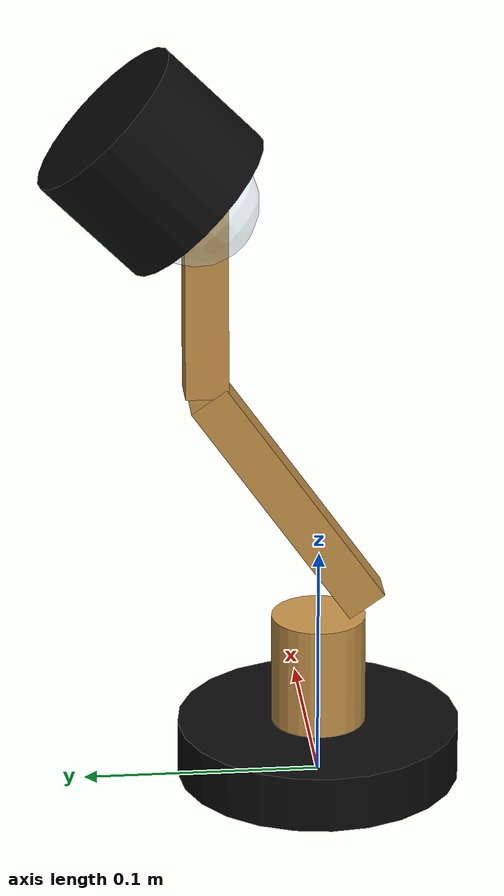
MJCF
<mujoco model="articulated_desk_lamp">
  <default>
    <joint limited="true" damping="1.2" frictionloss="0.18" stiffness="4.0"/>
    <geom condim="4" friction="0.8 0.01 0.001"/>
  </default>
  <asset>
    <material name="matte_black" rgba="0.04 0.04 0.04 1.0"/>
    <material name="brushed_gold" rgba="0.78 0.58 0.28 1.0"/>
    <material name="frosted_lens" rgba="0.82 0.94 1.0 0.35"/>
  </asset>
  <worldbody>
    <body name="lamp_base" pos="0 0 0">
      <geom
        name="lamp_weighted_base"
        type="cylinder"
        size="0.060 0.012"
        pos="0 0 0.012"
        mass="0.36"
        material="matte_black"
      />
      <geom
        name="lamp_base_collar"
        type="cylinder"
        size="0.020 0.024"
        pos="0 0 0.048"
        mass="0.08"
        material="brushed_gold"
      />
      <body name="lamp_lower_arm" pos="0 0 0.072" quat="0.953717 -0.300706 0 0">
        <joint name="lamp_lower_hinge" type="hinge" axis="1 0 0" range="-0.55 0.85"/>
        <geom
          name="lamp_lower_arm_bar"
          type="box"
          size="0.009 0.009 0.058"
          pos="0 -0.020 0.052"
          mass="0.055"
          material="brushed_gold"
        />
        <body name="lamp_upper_arm" pos="0 -0.040 0.105" quat="0.953717 0.300706 0 0">
          <joint name="lamp_elbow_hinge" type="hinge" axis="1 0 0" range="-0.85 0.85"/>
          <geom
            name="lamp_upper_arm_bar"
            type="box"
            size="0.009 0.009 0.052"
            pos="0 0.020 0.046"
            mass="0.045"
            material="brushed_gold"
          />
          <body name="lamp_head" pos="0 0.042 0.095" quat="0.92388 -0.382683 0 0">
            <joint name="lamp_head_hinge" type="hinge" axis="1 0 0" range="-0.90 0.60"/>
            <geom
              name="lamp_shade"
              type="cylinder"
              size="0.038 0.027"
              pos="0 0 0"
              mass="0.070"
              material="matte_black"
            />
            <geom
              name="lamp_frosted_lens"
              type="sphere"
              size="0.026"
              pos="0 0 -0.026"
              contype="0"
              conaffinity="0"
              mass="0.001"
              material="frosted_lens"
            />
          </body>
        </body>
      </body>
    </body>
  </worldbody>
</mujoco>
